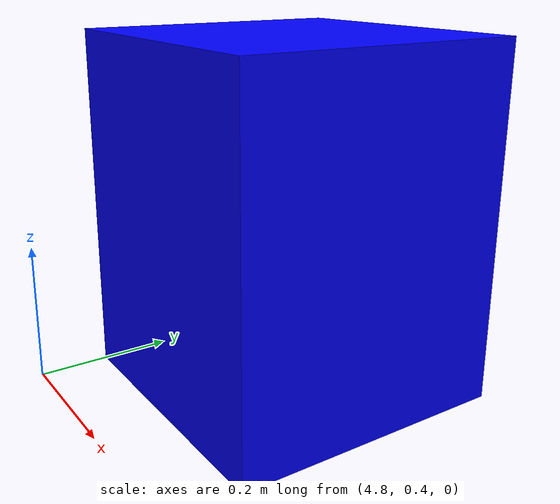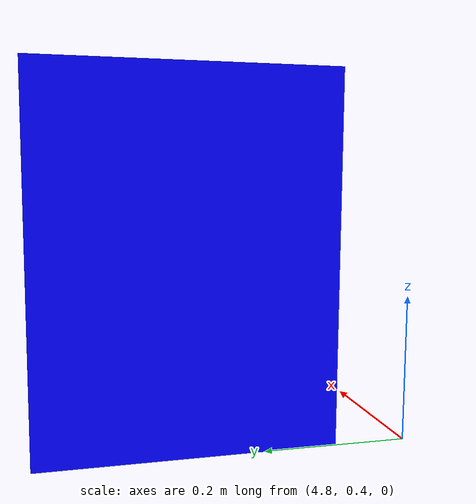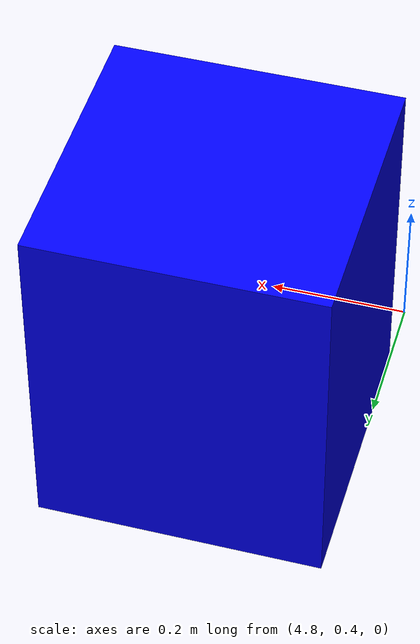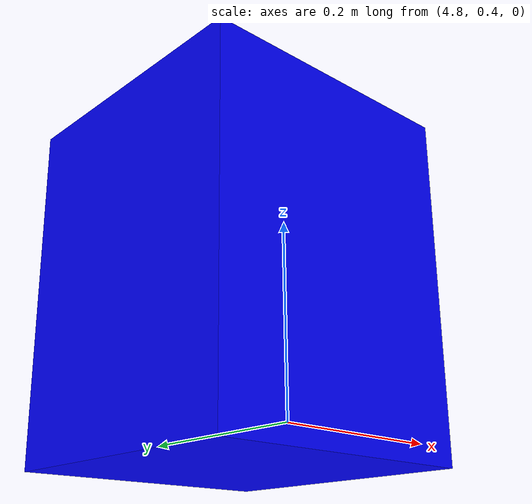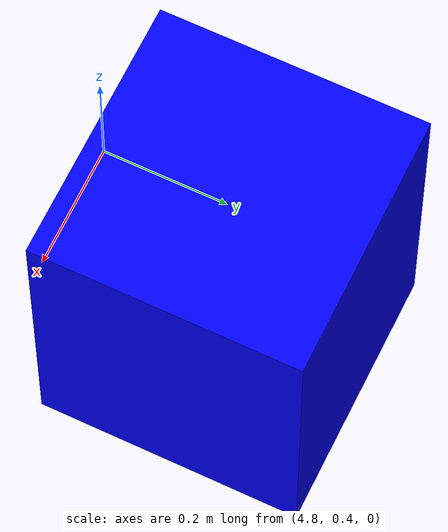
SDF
<?xml version="1.0" ?>
<sdf version="1.7">
    <model name="worker">
        <pose>5 0.7 0.25 0 0 0</pose>
        <link name="link">
            <inertial>
                <mass>1</mass>
                <inertia>
                    <ixx>0.01</ixx>
                    <ixy>0</ixy>
                    <ixz>0</ixz>
                    <iyy>0.01</iyy>
                    <iyz>0</iyz>
                    <izz>0.01</izz>
                </inertia>
            </inertial>
            <visual name="visual">
                <geometry>
                    <box>
                        <size>0.4 0.4 0.5</size>
                    </box>
                </geometry>
                <material>
                    <ambient>0 0 1 1</ambient>
                    <diffuse>0 0 1 1</diffuse>
                </material>
            </visual>
            <collision name="collision">
                <geometry>
                    <box>
                        <size>0.4 0.4 0.5</size>
                    </box>
                </geometry>
            </collision>
        </link>
    </model>
</sdf>
